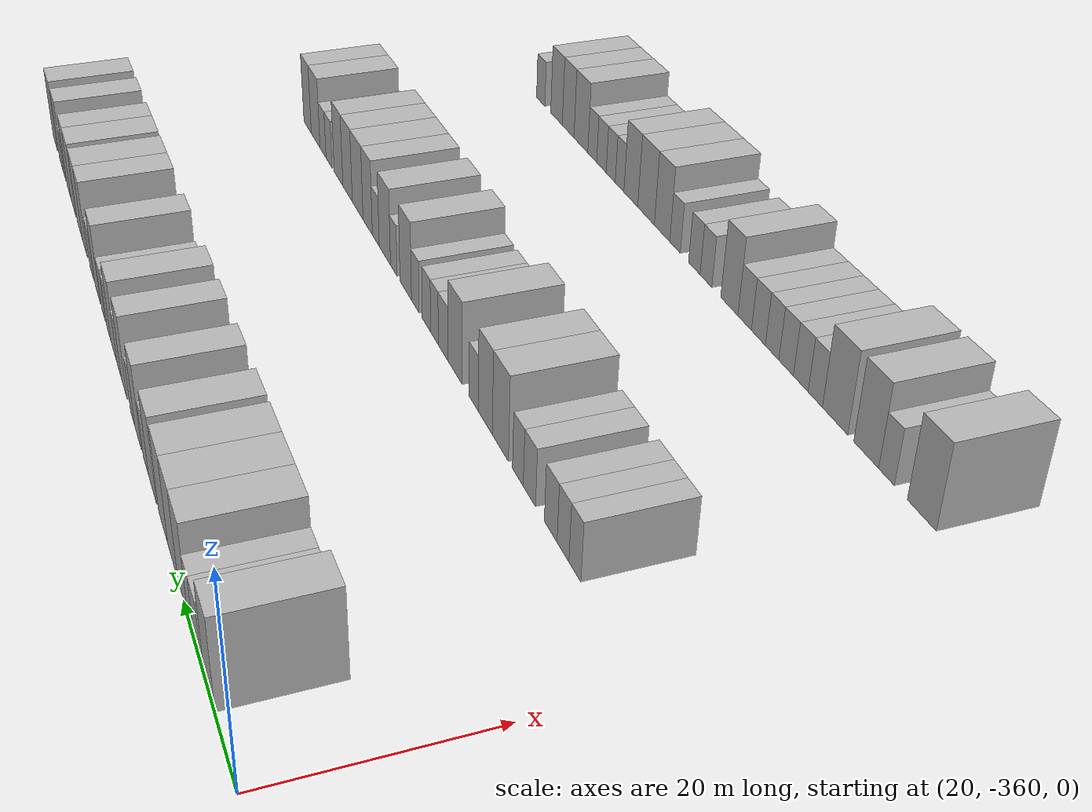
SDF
<sdf version="1.6">
 <world name="default">
  <model name="building_26">
   <static>1</static>
   <pose>25.0000 -350.1672 0 0.000000 0.000000 0.000000</pose>
   <link name="link">
    <pose>0 0 4.50 0 0 0</pose>
    <collision name="collision"><geometry><box><size>10.0000 4.0731 9.0000</size></box></geometry></collision>
    <visual name="visual">
     <cast_shadows>0</cast_shadows>
     <geometry><box><size>10.0000 4.0731 9.0000</size></box></geometry>
     <material>
      <script>
       <uri>model://HANNAS_wall/materials/scripts</uri>
       <uri>model://HANNAS_wall/materials/textures</uri>
       <name>vrc/HANNAS_wall</name>
      </script>
     </material>
    </visual>
   </link>
  </model>
  <model name="building_27">
   <static>1</static>
   <pose>25.0000 -345.6370 0 0.000000 0.000000 0.000000</pose>
   <link name="link">
    <pose>0 0 3.00 0 0 0</pose>
    <collision name="collision"><geometry><box><size>10.0000 2.9873 6.0000</size></box></geometry></collision>
    <visual name="visual">
     <cast_shadows>0</cast_shadows>
     <geometry><box><size>10.0000 2.9873 6.0000</size></box></geometry>
     <material>
      <script>
       <uri>model://HANNAS_wall/materials/scripts</uri>
       <uri>model://HANNAS_wall/materials/textures</uri>
       <name>vrc/HANNAS_wall</name>
      </script>
     </material>
    </visual>
   </link>
  </model>
  <model name="building_28">
   <static>1</static>
   <pose>25.0000 -342.8922 0 0.000000 0.000000 0.000000</pose>
   <link name="link">
    <pose>0 0 3.00 0 0 0</pose>
    <collision name="collision"><geometry><box><size>10.0000 2.5023 6.0000</size></box></geometry></collision>
    <visual name="visual">
     <cast_shadows>0</cast_shadows>
     <geometry><box><size>10.0000 2.5023 6.0000</size></box></geometry>
     <material>
      <script>
       <uri>model://HANNAS_wall/materials/scripts</uri>
       <uri>model://HANNAS_wall/materials/textures</uri>
       <name>vrc/HANNAS_wall</name>
      </script>
     </material>
    </visual>
   </link>
  </model>
  <model name="building_29">
   <static>1</static>
   <pose>25.0000 -339.5254 0 0.000000 0.000000 0.000000</pose>
   <link name="link">
    <pose>0 0 4.50 0 0 0</pose>
    <collision name="collision"><geometry><box><size>10.0000 4.2313 9.0000</size></box></geometry></collision>
    <visual name="visual">
     <cast_shadows>0</cast_shadows>
     <geometry><box><size>10.0000 4.2313 9.0000</size></box></geometry>
     <material>
      <script>
       <uri>model://HANNAS_wall/materials/scripts</uri>
       <uri>model://HANNAS_wall/materials/textures</uri>
       <name>vrc/HANNAS_wall</name>
      </script>
     </material>
    </visual>
   </link>
  </model>
  <model name="building_30">
   <static>1</static>
   <pose>25.0000 -335.1848 0 0.000000 0.000000 0.000000</pose>
   <link name="link">
    <pose>0 0 4.50 0 0 0</pose>
    <collision name="collision"><geometry><box><size>10.0000 4.4499 9.0000</size></box></geometry></collision>
    <visual name="visual">
     <cast_shadows>0</cast_shadows>
     <geometry><box><size>10.0000 4.4499 9.0000</size></box></geometry>
     <material>
      <script>
       <uri>model://HANNAS_wall/materials/scripts</uri>
       <uri>model://HANNAS_wall/materials/textures</uri>
       <name>vrc/HANNAS_wall</name>
      </script>
     </material>
    </visual>
   </link>
  </model>
  <model name="building_31">
   <static>1</static>
   <pose>25.0000 -330.7822 0 0.000000 0.000000 0.000000</pose>
   <link name="link">
    <pose>0 0 4.50 0 0 0</pose>
    <collision name="collision"><geometry><box><size>10.0000 4.3552 9.0000</size></box></geometry></collision>
    <visual name="visual">
     <cast_shadows>0</cast_shadows>
     <geometry><box><size>10.0000 4.3552 9.0000</size></box></geometry>
     <material>
      <script>
       <uri>model://HANNAS_wall/materials/scripts</uri>
       <uri>model://HANNAS_wall/materials/textures</uri>
       <name>vrc/HANNAS_wall</name>
      </script>
     </material>
    </visual>
   </link>
  </model>
  <model name="building_32">
   <static>1</static>
   <pose>25.0000 -325.5304 0 0.000000 0.000000 0.000000</pose>
   <link name="link">
    <pose>0 0 4.50 0 0 0</pose>
    <collision name="collision"><geometry><box><size>10.0000 4.1485 9.0000</size></box></geometry></collision>
    <visual name="visual">
     <cast_shadows>0</cast_shadows>
     <geometry><box><size>10.0000 4.1485 9.0000</size></box></geometry>
     <material>
      <script>
       <uri>model://HANNAS_wall/materials/scripts</uri>
       <uri>model://HANNAS_wall/materials/textures</uri>
       <name>vrc/HANNAS_wall</name>
      </script>
     </material>
    </visual>
   </link>
  </model>
  <model name="building_33">
   <static>1</static>
   <pose>25.0000 -322.0741 0 0.000000 0.000000 0.000000</pose>
   <link name="link">
    <pose>0 0 3.00 0 0 0</pose>
    <collision name="collision"><geometry><box><size>10.0000 2.7642 6.0000</size></box></geometry></collision>
    <visual name="visual">
     <cast_shadows>0</cast_shadows>
     <geometry><box><size>10.0000 2.7642 6.0000</size></box></geometry>
     <material>
      <script>
       <uri>model://HANNAS_wall/materials/scripts</uri>
       <uri>model://HANNAS_wall/materials/textures</uri>
       <name>vrc/HANNAS_wall</name>
      </script>
     </material>
    </visual>
   </link>
  </model>
  <model name="building_34">
   <static>1</static>
   <pose>25.0000 -317.8304 0 0.000000 0.000000 0.000000</pose>
   <link name="link">
    <pose>0 0 4.50 0 0 0</pose>
    <collision name="collision"><geometry><box><size>10.0000 3.7233 9.0000</size></box></geometry></collision>
    <visual name="visual">
     <cast_shadows>0</cast_shadows>
     <geometry><box><size>10.0000 3.7233 9.0000</size></box></geometry>
     <material>
      <script>
       <uri>model://HANNAS_wall/materials/scripts</uri>
       <uri>model://HANNAS_wall/materials/textures</uri>
       <name>vrc/HANNAS_wall</name>
      </script>
     </material>
    </visual>
   </link>
  </model>
  <model name="building_35">
   <static>1</static>
   <pose>25.0000 -314.7395 0 0.000000 0.000000 0.000000</pose>
   <link name="link">
    <pose>0 0 3.00 0 0 0</pose>
    <collision name="collision"><geometry><box><size>10.0000 2.4584 6.0000</size></box></geometry></collision>
    <visual name="visual">
     <cast_shadows>0</cast_shadows>
     <geometry><box><size>10.0000 2.4584 6.0000</size></box></geometry>
     <material>
      <script>
       <uri>model://HANNAS_wall/materials/scripts</uri>
       <uri>model://HANNAS_wall/materials/textures</uri>
       <name>vrc/HANNAS_wall</name>
      </script>
     </material>
    </visual>
   </link>
  </model>
  <model name="building_36">
   <static>1</static>
   <pose>25.0000 -309.7079 0 0.000000 0.000000 0.000000</pose>
   <link name="link">
    <pose>0 0 4.50 0 0 0</pose>
    <collision name="collision"><geometry><box><size>10.0000 3.6049 9.0000</size></box></geometry></collision>
    <visual name="visual">
     <cast_shadows>0</cast_shadows>
     <geometry><box><size>10.0000 3.6049 9.0000</size></box></geometry>
     <material>
      <script>
       <uri>model://HANNAS_wall/materials/scripts</uri>
       <uri>model://HANNAS_wall/materials/textures</uri>
       <name>vrc/HANNAS_wall</name>
      </script>
     </material>
    </visual>
   </link>
  </model>
  <model name="building_37">
   <static>1</static>
   <pose>25.0000 -306.5550 0 0.000000 0.000000 0.000000</pose>
   <link name="link">
    <pose>0 0 3.00 0 0 0</pose>
    <collision name="collision"><geometry><box><size>10.0000 2.7009 6.0000</size></box></geometry></collision>
    <visual name="visual">
     <cast_shadows>0</cast_shadows>
     <geometry><box><size>10.0000 2.7009 6.0000</size></box></geometry>
     <material>
      <script>
       <uri>model://HANNAS_wall/materials/scripts</uri>
       <uri>model://HANNAS_wall/materials/textures</uri>
       <name>vrc/HANNAS_wall</name>
      </script>
     </material>
    </visual>
   </link>
  </model>
  <model name="building_38">
   <static>1</static>
   <pose>25.0000 -303.2558 0 0.000000 0.000000 0.000000</pose>
   <link name="link">
    <pose>0 0 4.50 0 0 0</pose>
    <collision name="collision"><geometry><box><size>10.0000 3.8974 9.0000</size></box></geometry></collision>
    <visual name="visual">
     <cast_shadows>0</cast_shadows>
     <geometry><box><size>10.0000 3.8974 9.0000</size></box></geometry>
     <material>
      <script>
       <uri>model://HANNAS_wall/materials/scripts</uri>
       <uri>model://HANNAS_wall/materials/textures</uri>
       <name>vrc/HANNAS_wall</name>
      </script>
     </material>
    </visual>
   </link>
  </model>
  <model name="building_39">
   <static>1</static>
   <pose>25.0000 -299.8874 0 0.000000 0.000000 0.000000</pose>
   <link name="link">
    <pose>0 0 3.00 0 0 0</pose>
    <collision name="collision"><geometry><box><size>10.0000 2.8394 6.0000</size></box></geometry></collision>
    <visual name="visual">
     <cast_shadows>0</cast_shadows>
     <geometry><box><size>10.0000 2.8394 6.0000</size></box></geometry>
     <material>
      <script>
       <uri>model://HANNAS_wall/materials/scripts</uri>
       <uri>model://HANNAS_wall/materials/textures</uri>
       <name>vrc/HANNAS_wall</name>
      </script>
     </material>
    </visual>
   </link>
  </model>
  <model name="building_40">
   <static>1</static>
   <pose>25.0000 -296.1445 0 0.000000 0.000000 0.000000</pose>
   <link name="link">
    <pose>0 0 3.00 0 0 0</pose>
    <collision name="collision"><geometry><box><size>10.0000 2.6464 6.0000</size></box></geometry></collision>
    <visual name="visual">
     <cast_shadows>0</cast_shadows>
     <geometry><box><size>10.0000 2.6464 6.0000</size></box></geometry>
     <material>
      <script>
       <uri>model://HANNAS_wall/materials/scripts</uri>
       <uri>model://HANNAS_wall/materials/textures</uri>
       <name>vrc/HANNAS_wall</name>
      </script>
     </material>
    </visual>
   </link>
  </model>
  <model name="building_41">
   <static>1</static>
   <pose>25.0000 -291.9505 0 0.000000 0.000000 0.000000</pose>
   <link name="link">
    <pose>0 0 4.50 0 0 0</pose>
    <collision name="collision"><geometry><box><size>10.0000 3.7415 9.0000</size></box></geometry></collision>
    <visual name="visual">
     <cast_shadows>0</cast_shadows>
     <geometry><box><size>10.0000 3.7415 9.0000</size></box></geometry>
     <material>
      <script>
       <uri>model://HANNAS_wall/materials/scripts</uri>
       <uri>model://HANNAS_wall/materials/textures</uri>
       <name>vrc/HANNAS_wall</name>
      </script>
     </material>
    </visual>
   </link>
  </model>
  <model name="building_42">
   <static>1</static>
   <pose>25.0000 -287.5879 0 0.000000 0.000000 0.000000</pose>
   <link name="link">
    <pose>0 0 3.00 0 0 0</pose>
    <collision name="collision"><geometry><box><size>10.0000 2.9837 6.0000</size></box></geometry></collision>
    <visual name="visual">
     <cast_shadows>0</cast_shadows>
     <geometry><box><size>10.0000 2.9837 6.0000</size></box></geometry>
     <material>
      <script>
       <uri>model://HANNAS_wall/materials/scripts</uri>
       <uri>model://HANNAS_wall/materials/textures</uri>
       <name>vrc/HANNAS_wall</name>
      </script>
     </material>
    </visual>
   </link>
  </model>
  <model name="building_43">
   <static>1</static>
   <pose>25.0000 -282.1038 0 0.000000 0.000000 0.000000</pose>
   <link name="link">
    <pose>0 0 4.50 0 0 0</pose>
    <collision name="collision"><geometry><box><size>10.0000 3.9846 9.0000</size></box></geometry></collision>
    <visual name="visual">
     <cast_shadows>0</cast_shadows>
     <geometry><box><size>10.0000 3.9846 9.0000</size></box></geometry>
     <material>
      <script>
       <uri>model://HANNAS_wall/materials/scripts</uri>
       <uri>model://HANNAS_wall/materials/textures</uri>
       <name>vrc/HANNAS_wall</name>
      </script>
     </material>
    </visual>
   </link>
  </model>
  <model name="building_44">
   <static>1</static>
   <pose>25.0000 -277.9090 0 0.000000 0.000000 0.000000</pose>
   <link name="link">
    <pose>0 0 4.50 0 0 0</pose>
    <collision name="collision"><geometry><box><size>10.0000 4.4050 9.0000</size></box></geometry></collision>
    <visual name="visual">
     <cast_shadows>0</cast_shadows>
     <geometry><box><size>10.0000 4.4050 9.0000</size></box></geometry>
     <material>
      <script>
       <uri>model://HANNAS_wall/materials/scripts</uri>
       <uri>model://HANNAS_wall/materials/textures</uri>
       <name>vrc/HANNAS_wall</name>
      </script>
     </material>
    </visual>
   </link>
  </model>
  <model name="building_45">
   <static>1</static>
   <pose>25.0000 -272.4863 0 0.000000 0.000000 0.000000</pose>
   <link name="link">
    <pose>0 0 4.50 0 0 0</pose>
    <collision name="collision"><geometry><box><size>10.0000 4.4404 9.0000</size></box></geometry></collision>
    <visual name="visual">
     <cast_shadows>0</cast_shadows>
     <geometry><box><size>10.0000 4.4404 9.0000</size></box></geometry>
     <material>
      <script>
       <uri>model://HANNAS_wall/materials/scripts</uri>
       <uri>model://HANNAS_wall/materials/textures</uri>
       <name>vrc/HANNAS_wall</name>
      </script>
     </material>
    </visual>
   </link>
  </model>
  <model name="building_46">
   <static>1</static>
   <pose>25.0000 -268.4401 0 0.000000 0.000000 0.000000</pose>
   <link name="link">
    <pose>0 0 4.50 0 0 0</pose>
    <collision name="collision"><geometry><box><size>10.0000 3.6520 9.0000</size></box></geometry></collision>
    <visual name="visual">
     <cast_shadows>0</cast_shadows>
     <geometry><box><size>10.0000 3.6520 9.0000</size></box></geometry>
     <material>
      <script>
       <uri>model://HANNAS_wall/materials/scripts</uri>
       <uri>model://HANNAS_wall/materials/textures</uri>
       <name>vrc/HANNAS_wall</name>
      </script>
     </material>
    </visual>
   </link>
  </model>
  <model name="building_47">
   <static>1</static>
   <pose>25.0000 -264.3967 0 0.000000 0.000000 0.000000</pose>
   <link name="link">
    <pose>0 0 3.00 0 0 0</pose>
    <collision name="collision"><geometry><box><size>10.0000 2.4347 6.0000</size></box></geometry></collision>
    <visual name="visual">
     <cast_shadows>0</cast_shadows>
     <geometry><box><size>10.0000 2.4347 6.0000</size></box></geometry>
     <material>
      <script>
       <uri>model://HANNAS_wall/materials/scripts</uri>
       <uri>model://HANNAS_wall/materials/textures</uri>
       <name>vrc/HANNAS_wall</name>
      </script>
     </material>
    </visual>
   </link>
  </model>
  <model name="building_48">
   <static>1</static>
   <pose>25.0000 -261.1914 0 0.000000 0.000000 0.000000</pose>
   <link name="link">
    <pose>0 0 4.50 0 0 0</pose>
    <collision name="collision"><geometry><box><size>10.0000 3.9759 9.0000</size></box></geometry></collision>
    <visual name="visual">
     <cast_shadows>0</cast_shadows>
     <geometry><box><size>10.0000 3.9759 9.0000</size></box></geometry>
     <material>
      <script>
       <uri>model://HANNAS_wall/materials/scripts</uri>
       <uri>model://HANNAS_wall/materials/textures</uri>
       <name>vrc/HANNAS_wall</name>
      </script>
     </material>
    </visual>
   </link>
  </model>
  <model name="building_49">
   <static>1</static>
   <pose>25.0000 -255.0566 0 0.000000 0.000000 0.000000</pose>
   <link name="link">
    <pose>0 0 4.50 0 0 0</pose>
    <collision name="collision"><geometry><box><size>10.0000 4.2938 9.0000</size></box></geometry></collision>
    <visual name="visual">
     <cast_shadows>0</cast_shadows>
     <geometry><box><size>10.0000 4.2938 9.0000</size></box></geometry>
     <material>
      <script>
       <uri>model://HANNAS_wall/materials/scripts</uri>
       <uri>model://HANNAS_wall/materials/textures</uri>
       <name>vrc/HANNAS_wall</name>
      </script>
     </material>
    </visual>
   </link>
  </model>
  <model name="building_262">
   <static>1</static>
   <pose>55.0000 -346.6349 0 0.000000 0.000000 0.000000</pose>
   <link name="link">
    <pose>0 0 3.00 0 0 0</pose>
    <collision name="collision"><geometry><box><size>10.0000 2.4881 6.0000</size></box></geometry></collision>
    <visual name="visual">
     <cast_shadows>0</cast_shadows>
     <geometry><box><size>10.0000 2.4881 6.0000</size></box></geometry>
     <material>
      <script>
       <uri>model://HANNAS_wall/materials/scripts</uri>
       <uri>model://HANNAS_wall/materials/textures</uri>
       <name>vrc/HANNAS_wall</name>
      </script>
     </material>
    </visual>
   </link>
  </model>
  <model name="building_263">
   <static>1</static>
   <pose>55.0000 -344.1157 0 0.000000 0.000000 0.000000</pose>
   <link name="link">
    <pose>0 0 3.00 0 0 0</pose>
    <collision name="collision"><geometry><box><size>10.0000 2.5502 6.0000</size></box></geometry></collision>
    <visual name="visual">
     <cast_shadows>0</cast_shadows>
     <geometry><box><size>10.0000 2.5502 6.0000</size></box></geometry>
     <material>
      <script>
       <uri>model://HANNAS_wall/materials/scripts</uri>
       <uri>model://HANNAS_wall/materials/textures</uri>
       <name>vrc/HANNAS_wall</name>
      </script>
     </material>
    </visual>
   </link>
  </model>
  <model name="building_264">
   <static>1</static>
   <pose>55.0000 -341.4378 0 0.000000 0.000000 0.000000</pose>
   <link name="link">
    <pose>0 0 3.00 0 0 0</pose>
    <collision name="collision"><geometry><box><size>10.0000 2.8056 6.0000</size></box></geometry></collision>
    <visual name="visual">
     <cast_shadows>0</cast_shadows>
     <geometry><box><size>10.0000 2.8056 6.0000</size></box></geometry>
     <material>
      <script>
       <uri>model://HANNAS_wall/materials/scripts</uri>
       <uri>model://HANNAS_wall/materials/textures</uri>
       <name>vrc/HANNAS_wall</name>
      </script>
     </material>
    </visual>
   </link>
  </model>
  <model name="building_265">
   <static>1</static>
   <pose>55.0000 -336.5832 0 0.000000 0.000000 0.000000</pose>
   <link name="link">
    <pose>0 0 3.00 0 0 0</pose>
    <collision name="collision"><geometry><box><size>10.0000 2.9038 6.0000</size></box></geometry></collision>
    <visual name="visual">
     <cast_shadows>0</cast_shadows>
     <geometry><box><size>10.0000 2.9038 6.0000</size></box></geometry>
     <material>
      <script>
       <uri>model://HANNAS_wall/materials/scripts</uri>
       <uri>model://HANNAS_wall/materials/textures</uri>
       <name>vrc/HANNAS_wall</name>
      </script>
     </material>
    </visual>
   </link>
  </model>
  <model name="building_266">
   <static>1</static>
   <pose>55.0000 -333.8199 0 0.000000 0.000000 0.000000</pose>
   <link name="link">
    <pose>0 0 3.00 0 0 0</pose>
    <collision name="collision"><geometry><box><size>10.0000 2.6228 6.0000</size></box></geometry></collision>
    <visual name="visual">
     <cast_shadows>0</cast_shadows>
     <geometry><box><size>10.0000 2.6228 6.0000</size></box></geometry>
     <material>
      <script>
       <uri>model://HANNAS_wall/materials/scripts</uri>
       <uri>model://HANNAS_wall/materials/textures</uri>
       <name>vrc/HANNAS_wall</name>
      </script>
     </material>
    </visual>
   </link>
  </model>
  <model name="building_267">
   <static>1</static>
   <pose>55.0000 -329.4349 0 0.000000 0.000000 0.000000</pose>
   <link name="link">
    <pose>0 0 4.50 0 0 0</pose>
    <collision name="collision"><geometry><box><size>10.0000 4.1471 9.0000</size></box></geometry></collision>
    <visual name="visual">
     <cast_shadows>0</cast_shadows>
     <geometry><box><size>10.0000 4.1471 9.0000</size></box></geometry>
     <material>
      <script>
       <uri>model://HANNAS_wall/materials/scripts</uri>
       <uri>model://HANNAS_wall/materials/textures</uri>
       <name>vrc/HANNAS_wall</name>
      </script>
     </material>
    </visual>
   </link>
  </model>
  <model name="building_268">
   <static>1</static>
   <pose>55.0000 -325.4736 0 0.000000 0.000000 0.000000</pose>
   <link name="link">
    <pose>0 0 4.50 0 0 0</pose>
    <collision name="collision"><geometry><box><size>10.0000 3.7755 9.0000</size></box></geometry></collision>
    <visual name="visual">
     <cast_shadows>0</cast_shadows>
     <geometry><box><size>10.0000 3.7755 9.0000</size></box></geometry>
     <material>
      <script>
       <uri>model://HANNAS_wall/materials/scripts</uri>
       <uri>model://HANNAS_wall/materials/textures</uri>
       <name>vrc/HANNAS_wall</name>
      </script>
     </material>
    </visual>
   </link>
  </model>
  <model name="building_269">
   <static>1</static>
   <pose>55.0000 -322.3316 0 0.000000 0.000000 0.000000</pose>
   <link name="link">
    <pose>0 0 3.00 0 0 0</pose>
    <collision name="collision"><geometry><box><size>10.0000 2.5087 6.0000</size></box></geometry></collision>
    <visual name="visual">
     <cast_shadows>0</cast_shadows>
     <geometry><box><size>10.0000 2.5087 6.0000</size></box></geometry>
     <material>
      <script>
       <uri>model://HANNAS_wall/materials/scripts</uri>
       <uri>model://HANNAS_wall/materials/textures</uri>
       <name>vrc/HANNAS_wall</name>
      </script>
     </material>
    </visual>
   </link>
  </model>
  <model name="building_270">
   <static>1</static>
   <pose>55.0000 -317.0131 0 0.000000 0.000000 0.000000</pose>
   <link name="link">
    <pose>0 0 4.50 0 0 0</pose>
    <collision name="collision"><geometry><box><size>10.0000 4.1282 9.0000</size></box></geometry></collision>
    <visual name="visual">
     <cast_shadows>0</cast_shadows>
     <geometry><box><size>10.0000 4.1282 9.0000</size></box></geometry>
     <material>
      <script>
       <uri>model://HANNAS_wall/materials/scripts</uri>
       <uri>model://HANNAS_wall/materials/textures</uri>
       <name>vrc/HANNAS_wall</name>
      </script>
     </material>
    </visual>
   </link>
  </model>
  <model name="building_271">
   <static>1</static>
   <pose>55.0000 -313.4505 0 0.000000 0.000000 0.000000</pose>
   <link name="link">
    <pose>0 0 3.00 0 0 0</pose>
    <collision name="collision"><geometry><box><size>10.0000 2.9970 6.0000</size></box></geometry></collision>
    <visual name="visual">
     <cast_shadows>0</cast_shadows>
     <geometry><box><size>10.0000 2.9970 6.0000</size></box></geometry>
     <material>
      <script>
       <uri>model://HANNAS_wall/materials/scripts</uri>
       <uri>model://HANNAS_wall/materials/textures</uri>
       <name>vrc/HANNAS_wall</name>
      </script>
     </material>
    </visual>
   </link>
  </model>
  <model name="building_272">
   <static>1</static>
   <pose>55.0000 -310.7449 0 0.000000 0.000000 0.000000</pose>
   <link name="link">
    <pose>0 0 3.00 0 0 0</pose>
    <collision name="collision"><geometry><box><size>10.0000 2.4142 6.0000</size></box></geometry></collision>
    <visual name="visual">
     <cast_shadows>0</cast_shadows>
     <geometry><box><size>10.0000 2.4142 6.0000</size></box></geometry>
     <material>
      <script>
       <uri>model://HANNAS_wall/materials/scripts</uri>
       <uri>model://HANNAS_wall/materials/textures</uri>
       <name>vrc/HANNAS_wall</name>
      </script>
     </material>
    </visual>
   </link>
  </model>
  <model name="building_273">
   <static>1</static>
   <pose>55.0000 -308.1806 0 0.000000 0.000000 0.000000</pose>
   <link name="link">
    <pose>0 0 3.00 0 0 0</pose>
    <collision name="collision"><geometry><box><size>10.0000 2.7143 6.0000</size></box></geometry></collision>
    <visual name="visual">
     <cast_shadows>0</cast_shadows>
     <geometry><box><size>10.0000 2.7143 6.0000</size></box></geometry>
     <material>
      <script>
       <uri>model://HANNAS_wall/materials/scripts</uri>
       <uri>model://HANNAS_wall/materials/textures</uri>
       <name>vrc/HANNAS_wall</name>
      </script>
     </material>
    </visual>
   </link>
  </model>
  <model name="building_274">
   <static>1</static>
   <pose>55.0000 -304.5362 0 0.000000 0.000000 0.000000</pose>
   <link name="link">
    <pose>0 0 3.00 0 0 0</pose>
    <collision name="collision"><geometry><box><size>10.0000 2.5746 6.0000</size></box></geometry></collision>
    <visual name="visual">
     <cast_shadows>0</cast_shadows>
     <geometry><box><size>10.0000 2.5746 6.0000</size></box></geometry>
     <material>
      <script>
       <uri>model://HANNAS_wall/materials/scripts</uri>
       <uri>model://HANNAS_wall/materials/textures</uri>
       <name>vrc/HANNAS_wall</name>
      </script>
     </material>
    </visual>
   </link>
  </model>
  <model name="building_275">
   <static>1</static>
   <pose>55.0000 -301.2567 0 0.000000 0.000000 0.000000</pose>
   <link name="link">
    <pose>0 0 4.50 0 0 0</pose>
    <collision name="collision"><geometry><box><size>10.0000 3.9843 9.0000</size></box></geometry></collision>
    <visual name="visual">
     <cast_shadows>0</cast_shadows>
     <geometry><box><size>10.0000 3.9843 9.0000</size></box></geometry>
     <material>
      <script>
       <uri>model://HANNAS_wall/materials/scripts</uri>
       <uri>model://HANNAS_wall/materials/textures</uri>
       <name>vrc/HANNAS_wall</name>
      </script>
     </material>
    </visual>
   </link>
  </model>
  <model name="building_276">
   <static>1</static>
   <pose>55.0000 -297.0588 0 0.000000 0.000000 0.000000</pose>
   <link name="link">
    <pose>0 0 3.00 0 0 0</pose>
    <collision name="collision"><geometry><box><size>10.0000 2.4116 6.0000</size></box></geometry></collision>
    <visual name="visual">
     <cast_shadows>0</cast_shadows>
     <geometry><box><size>10.0000 2.4116 6.0000</size></box></geometry>
     <material>
      <script>
       <uri>model://HANNAS_wall/materials/scripts</uri>
       <uri>model://HANNAS_wall/materials/textures</uri>
       <name>vrc/HANNAS_wall</name>
      </script>
     </material>
    </visual>
   </link>
  </model>
  <model name="building_277">
   <static>1</static>
   <pose>55.0000 -293.7580 0 0.000000 0.000000 0.000000</pose>
   <link name="link">
    <pose>0 0 4.50 0 0 0</pose>
    <collision name="collision"><geometry><box><size>10.0000 4.1901 9.0000</size></box></geometry></collision>
    <visual name="visual">
     <cast_shadows>0</cast_shadows>
     <geometry><box><size>10.0000 4.1901 9.0000</size></box></geometry>
     <material>
      <script>
       <uri>model://HANNAS_wall/materials/scripts</uri>
       <uri>model://HANNAS_wall/materials/textures</uri>
       <name>vrc/HANNAS_wall</name>
      </script>
     </material>
    </visual>
   </link>
  </model>
  <model name="building_278">
   <static>1</static>
   <pose>55.0000 -290.3494 0 0.000000 0.000000 0.000000</pose>
   <link name="link">
    <pose>0 0 3.00 0 0 0</pose>
    <collision name="collision"><geometry><box><size>10.0000 2.6272 6.0000</size></box></geometry></collision>
    <visual name="visual">
     <cast_shadows>0</cast_shadows>
     <geometry><box><size>10.0000 2.6272 6.0000</size></box></geometry>
     <material>
      <script>
       <uri>model://HANNAS_wall/materials/scripts</uri>
       <uri>model://HANNAS_wall/materials/textures</uri>
       <name>vrc/HANNAS_wall</name>
      </script>
     </material>
    </visual>
   </link>
  </model>
  <model name="building_279">
   <static>1</static>
   <pose>55.0000 -287.1884 0 0.000000 0.000000 0.000000</pose>
   <link name="link">
    <pose>0 0 4.50 0 0 0</pose>
    <collision name="collision"><geometry><box><size>10.0000 3.6947 9.0000</size></box></geometry></collision>
    <visual name="visual">
     <cast_shadows>0</cast_shadows>
     <geometry><box><size>10.0000 3.6947 9.0000</size></box></geometry>
     <material>
      <script>
       <uri>model://HANNAS_wall/materials/scripts</uri>
       <uri>model://HANNAS_wall/materials/textures</uri>
       <name>vrc/HANNAS_wall</name>
      </script>
     </material>
    </visual>
   </link>
  </model>
  <model name="building_280">
   <static>1</static>
   <pose>55.0000 -283.1268 0 0.000000 0.000000 0.000000</pose>
   <link name="link">
    <pose>0 0 4.50 0 0 0</pose>
    <collision name="collision"><geometry><box><size>10.0000 4.4284 9.0000</size></box></geometry></collision>
    <visual name="visual">
     <cast_shadows>0</cast_shadows>
     <geometry><box><size>10.0000 4.4284 9.0000</size></box></geometry>
     <material>
      <script>
       <uri>model://HANNAS_wall/materials/scripts</uri>
       <uri>model://HANNAS_wall/materials/textures</uri>
       <name>vrc/HANNAS_wall</name>
      </script>
     </material>
    </visual>
   </link>
  </model>
  <model name="building_281">
   <static>1</static>
   <pose>55.0000 -278.8996 0 0.000000 0.000000 0.000000</pose>
   <link name="link">
    <pose>0 0 4.50 0 0 0</pose>
    <collision name="collision"><geometry><box><size>10.0000 4.0261 9.0000</size></box></geometry></collision>
    <visual name="visual">
     <cast_shadows>0</cast_shadows>
     <geometry><box><size>10.0000 4.0261 9.0000</size></box></geometry>
     <material>
      <script>
       <uri>model://HANNAS_wall/materials/scripts</uri>
       <uri>model://HANNAS_wall/materials/textures</uri>
       <name>vrc/HANNAS_wall</name>
      </script>
     </material>
    </visual>
   </link>
  </model>
  <model name="building_282">
   <static>1</static>
   <pose>55.0000 -274.9570 0 0.000000 0.000000 0.000000</pose>
   <link name="link">
    <pose>0 0 4.50 0 0 0</pose>
    <collision name="collision"><geometry><box><size>10.0000 3.8592 9.0000</size></box></geometry></collision>
    <visual name="visual">
     <cast_shadows>0</cast_shadows>
     <geometry><box><size>10.0000 3.8592 9.0000</size></box></geometry>
     <material>
      <script>
       <uri>model://HANNAS_wall/materials/scripts</uri>
       <uri>model://HANNAS_wall/materials/textures</uri>
       <name>vrc/HANNAS_wall</name>
      </script>
     </material>
    </visual>
   </link>
  </model>
  <model name="building_283">
   <static>1</static>
   <pose>55.0000 -270.6451 0 0.000000 0.000000 0.000000</pose>
   <link name="link">
    <pose>0 0 3.00 0 0 0</pose>
    <collision name="collision"><geometry><box><size>10.0000 2.7645 6.0000</size></box></geometry></collision>
    <visual name="visual">
     <cast_shadows>0</cast_shadows>
     <geometry><box><size>10.0000 2.7645 6.0000</size></box></geometry>
     <material>
      <script>
       <uri>model://HANNAS_wall/materials/scripts</uri>
       <uri>model://HANNAS_wall/materials/textures</uri>
       <name>vrc/HANNAS_wall</name>
      </script>
     </material>
    </visual>
   </link>
  </model>
  <model name="building_284">
   <static>1</static>
   <pose>55.0000 -267.8725 0 0.000000 0.000000 0.000000</pose>
   <link name="link">
    <pose>0 0 3.00 0 0 0</pose>
    <collision name="collision"><geometry><box><size>10.0000 2.7808 6.0000</size></box></geometry></collision>
    <visual name="visual">
     <cast_shadows>0</cast_shadows>
     <geometry><box><size>10.0000 2.7808 6.0000</size></box></geometry>
     <material>
      <script>
       <uri>model://HANNAS_wall/materials/scripts</uri>
       <uri>model://HANNAS_wall/materials/textures</uri>
       <name>vrc/HANNAS_wall</name>
      </script>
     </material>
    </visual>
   </link>
  </model>
  <model name="building_285">
   <static>1</static>
   <pose>55.0000 -264.3488 0 0.000000 0.000000 0.000000</pose>
   <link name="link">
    <pose>0 0 4.50 0 0 0</pose>
    <collision name="collision"><geometry><box><size>10.0000 4.2666 9.0000</size></box></geometry></collision>
    <visual name="visual">
     <cast_shadows>0</cast_shadows>
     <geometry><box><size>10.0000 4.2666 9.0000</size></box></geometry>
     <material>
      <script>
       <uri>model://HANNAS_wall/materials/scripts</uri>
       <uri>model://HANNAS_wall/materials/textures</uri>
       <name>vrc/HANNAS_wall</name>
      </script>
     </material>
    </visual>
   </link>
  </model>
  <model name="building_286">
   <static>1</static>
   <pose>55.0000 -260.3880 0 0.000000 0.000000 0.000000</pose>
   <link name="link">
    <pose>0 0 4.50 0 0 0</pose>
    <collision name="collision"><geometry><box><size>10.0000 3.6549 9.0000</size></box></geometry></collision>
    <visual name="visual">
     <cast_shadows>0</cast_shadows>
     <geometry><box><size>10.0000 3.6549 9.0000</size></box></geometry>
     <material>
      <script>
       <uri>model://HANNAS_wall/materials/scripts</uri>
       <uri>model://HANNAS_wall/materials/textures</uri>
       <name>vrc/HANNAS_wall</name>
      </script>
     </material>
    </visual>
   </link>
  </model>
  <model name="building_471">
   <static>1</static>
   <pose>85.0000 -349.3738 0 0.000000 0.000000 0.000000</pose>
   <link name="link">
    <pose>0 0 4.50 0 0 0</pose>
    <collision name="collision"><geometry><box><size>10.0000 4.3116 9.0000</size></box></geometry></collision>
    <visual name="visual">
     <cast_shadows>0</cast_shadows>
     <geometry><box><size>10.0000 4.3116 9.0000</size></box></geometry>
     <material>
      <script>
       <uri>model://HANNAS_wall/materials/scripts</uri>
       <uri>model://HANNAS_wall/materials/textures</uri>
       <name>vrc/HANNAS_wall</name>
      </script>
     </material>
    </visual>
   </link>
  </model>
  <model name="building_472">
   <static>1</static>
   <pose>85.0000 -343.9709 0 0.000000 0.000000 0.000000</pose>
   <link name="link">
    <pose>0 0 3.00 0 0 0</pose>
    <collision name="collision"><geometry><box><size>10.0000 2.4942 6.0000</size></box></geometry></collision>
    <visual name="visual">
     <cast_shadows>0</cast_shadows>
     <geometry><box><size>10.0000 2.4942 6.0000</size></box></geometry>
     <material>
      <script>
       <uri>model://HANNAS_wall/materials/scripts</uri>
       <uri>model://HANNAS_wall/materials/textures</uri>
       <name>vrc/HANNAS_wall</name>
      </script>
     </material>
    </visual>
   </link>
  </model>
  <model name="building_473">
   <static>1</static>
   <pose>85.0000 -340.6652 0 0.000000 0.000000 0.000000</pose>
   <link name="link">
    <pose>0 0 4.50 0 0 0</pose>
    <collision name="collision"><geometry><box><size>10.0000 4.1172 9.0000</size></box></geometry></collision>
    <visual name="visual">
     <cast_shadows>0</cast_shadows>
     <geometry><box><size>10.0000 4.1172 9.0000</size></box></geometry>
     <material>
      <script>
       <uri>model://HANNAS_wall/materials/scripts</uri>
       <uri>model://HANNAS_wall/materials/textures</uri>
       <name>vrc/HANNAS_wall</name>
      </script>
     </material>
    </visual>
   </link>
  </model>
  <model name="building_474">
   <static>1</static>
   <pose>85.0000 -335.3727 0 0.000000 0.000000 0.000000</pose>
   <link name="link">
    <pose>0 0 4.50 0 0 0</pose>
    <collision name="collision"><geometry><box><size>10.0000 4.4680 9.0000</size></box></geometry></collision>
    <visual name="visual">
     <cast_shadows>0</cast_shadows>
     <geometry><box><size>10.0000 4.4680 9.0000</size></box></geometry>
     <material>
      <script>
       <uri>model://HANNAS_wall/materials/scripts</uri>
       <uri>model://HANNAS_wall/materials/textures</uri>
       <name>vrc/HANNAS_wall</name>
      </script>
     </material>
    </visual>
   </link>
  </model>
  <model name="building_475">
   <static>1</static>
   <pose>85.0000 -331.8373 0 0.000000 0.000000 0.000000</pose>
   <link name="link">
    <pose>0 0 3.00 0 0 0</pose>
    <collision name="collision"><geometry><box><size>10.0000 2.6028 6.0000</size></box></geometry></collision>
    <visual name="visual">
     <cast_shadows>0</cast_shadows>
     <geometry><box><size>10.0000 2.6028 6.0000</size></box></geometry>
     <material>
      <script>
       <uri>model://HANNAS_wall/materials/scripts</uri>
       <uri>model://HANNAS_wall/materials/textures</uri>
       <name>vrc/HANNAS_wall</name>
      </script>
     </material>
    </visual>
   </link>
  </model>
  <model name="building_476">
   <static>1</static>
   <pose>85.0000 -329.1518 0 0.000000 0.000000 0.000000</pose>
   <link name="link">
    <pose>0 0 3.00 0 0 0</pose>
    <collision name="collision"><geometry><box><size>10.0000 2.7681 6.0000</size></box></geometry></collision>
    <visual name="visual">
     <cast_shadows>0</cast_shadows>
     <geometry><box><size>10.0000 2.7681 6.0000</size></box></geometry>
     <material>
      <script>
       <uri>model://HANNAS_wall/materials/scripts</uri>
       <uri>model://HANNAS_wall/materials/textures</uri>
       <name>vrc/HANNAS_wall</name>
      </script>
     </material>
    </visual>
   </link>
  </model>
  <model name="building_477">
   <static>1</static>
   <pose>85.0000 -326.3600 0 0.000000 0.000000 0.000000</pose>
   <link name="link">
    <pose>0 0 3.00 0 0 0</pose>
    <collision name="collision"><geometry><box><size>10.0000 2.8157 6.0000</size></box></geometry></collision>
    <visual name="visual">
     <cast_shadows>0</cast_shadows>
     <geometry><box><size>10.0000 2.8157 6.0000</size></box></geometry>
     <material>
      <script>
       <uri>model://HANNAS_wall/materials/scripts</uri>
       <uri>model://HANNAS_wall/materials/textures</uri>
       <name>vrc/HANNAS_wall</name>
      </script>
     </material>
    </visual>
   </link>
  </model>
  <model name="building_478">
   <static>1</static>
   <pose>85.0000 -323.6005 0 0.000000 0.000000 0.000000</pose>
   <link name="link">
    <pose>0 0 3.00 0 0 0</pose>
    <collision name="collision"><geometry><box><size>10.0000 2.7033 6.0000</size></box></geometry></collision>
    <visual name="visual">
     <cast_shadows>0</cast_shadows>
     <geometry><box><size>10.0000 2.7033 6.0000</size></box></geometry>
     <material>
      <script>
       <uri>model://HANNAS_wall/materials/scripts</uri>
       <uri>model://HANNAS_wall/materials/textures</uri>
       <name>vrc/HANNAS_wall</name>
      </script>
     </material>
    </visual>
   </link>
  </model>
  <model name="building_479">
   <static>1</static>
   <pose>85.0000 -320.8213 0 0.000000 0.000000 0.000000</pose>
   <link name="link">
    <pose>0 0 3.00 0 0 0</pose>
    <collision name="collision"><geometry><box><size>10.0000 2.8552 6.0000</size></box></geometry></collision>
    <visual name="visual">
     <cast_shadows>0</cast_shadows>
     <geometry><box><size>10.0000 2.8552 6.0000</size></box></geometry>
     <material>
      <script>
       <uri>model://HANNAS_wall/materials/scripts</uri>
       <uri>model://HANNAS_wall/materials/textures</uri>
       <name>vrc/HANNAS_wall</name>
      </script>
     </material>
    </visual>
   </link>
  </model>
  <model name="building_480">
   <static>1</static>
   <pose>85.0000 -317.9692 0 0.000000 0.000000 0.000000</pose>
   <link name="link">
    <pose>0 0 3.00 0 0 0</pose>
    <collision name="collision"><geometry><box><size>10.0000 2.8491 6.0000</size></box></geometry></collision>
    <visual name="visual">
     <cast_shadows>0</cast_shadows>
     <geometry><box><size>10.0000 2.8491 6.0000</size></box></geometry>
     <material>
      <script>
       <uri>model://HANNAS_wall/materials/scripts</uri>
       <uri>model://HANNAS_wall/materials/textures</uri>
       <name>vrc/HANNAS_wall</name>
      </script>
     </material>
    </visual>
   </link>
  </model>
  <model name="building_481">
   <static>1</static>
   <pose>85.0000 -314.6621 0 0.000000 0.000000 0.000000</pose>
   <link name="link">
    <pose>0 0 4.50 0 0 0</pose>
    <collision name="collision"><geometry><box><size>10.0000 3.7651 9.0000</size></box></geometry></collision>
    <visual name="visual">
     <cast_shadows>0</cast_shadows>
     <geometry><box><size>10.0000 3.7651 9.0000</size></box></geometry>
     <material>
      <script>
       <uri>model://HANNAS_wall/materials/scripts</uri>
       <uri>model://HANNAS_wall/materials/textures</uri>
       <name>vrc/HANNAS_wall</name>
      </script>
     </material>
    </visual>
   </link>
  </model>
  <model name="building_482">
   <static>1</static>
   <pose>85.0000 -309.4191 0 0.000000 0.000000 0.000000</pose>
   <link name="link">
    <pose>0 0 3.00 0 0 0</pose>
    <collision name="collision"><geometry><box><size>10.0000 2.7208 6.0000</size></box></geometry></collision>
    <visual name="visual">
     <cast_shadows>0</cast_shadows>
     <geometry><box><size>10.0000 2.7208 6.0000</size></box></geometry>
     <material>
      <script>
       <uri>model://HANNAS_wall/materials/scripts</uri>
       <uri>model://HANNAS_wall/materials/textures</uri>
       <name>vrc/HANNAS_wall</name>
      </script>
     </material>
    </visual>
   </link>
  </model>
  <model name="building_483">
   <static>1</static>
   <pose>85.0000 -306.6988 0 0.000000 0.000000 0.000000</pose>
   <link name="link">
    <pose>0 0 3.00 0 0 0</pose>
    <collision name="collision"><geometry><box><size>10.0000 2.7199 6.0000</size></box></geometry></collision>
    <visual name="visual">
     <cast_shadows>0</cast_shadows>
     <geometry><box><size>10.0000 2.7199 6.0000</size></box></geometry>
     <material>
      <script>
       <uri>model://HANNAS_wall/materials/scripts</uri>
       <uri>model://HANNAS_wall/materials/textures</uri>
       <name>vrc/HANNAS_wall</name>
      </script>
     </material>
    </visual>
   </link>
  </model>
  <model name="building_484">
   <static>1</static>
   <pose>85.0000 -302.0310 0 0.000000 0.000000 0.000000</pose>
   <link name="link">
    <pose>0 0 3.00 0 0 0</pose>
    <collision name="collision"><geometry><box><size>10.0000 2.6155 6.0000</size></box></geometry></collision>
    <visual name="visual">
     <cast_shadows>0</cast_shadows>
     <geometry><box><size>10.0000 2.6155 6.0000</size></box></geometry>
     <material>
      <script>
       <uri>model://HANNAS_wall/materials/scripts</uri>
       <uri>model://HANNAS_wall/materials/textures</uri>
       <name>vrc/HANNAS_wall</name>
      </script>
     </material>
    </visual>
   </link>
  </model>
  <model name="building_485">
   <static>1</static>
   <pose>85.0000 -298.7519 0 0.000000 0.000000 0.000000</pose>
   <link name="link">
    <pose>0 0 4.50 0 0 0</pose>
    <collision name="collision"><geometry><box><size>10.0000 3.9428 9.0000</size></box></geometry></collision>
    <visual name="visual">
     <cast_shadows>0</cast_shadows>
     <geometry><box><size>10.0000 3.9428 9.0000</size></box></geometry>
     <material>
      <script>
       <uri>model://HANNAS_wall/materials/scripts</uri>
       <uri>model://HANNAS_wall/materials/textures</uri>
       <name>vrc/HANNAS_wall</name>
      </script>
     </material>
    </visual>
   </link>
  </model>
  <model name="building_486">
   <static>1</static>
   <pose>85.0000 -294.5715 0 0.000000 0.000000 0.000000</pose>
   <link name="link">
    <pose>0 0 4.50 0 0 0</pose>
    <collision name="collision"><geometry><box><size>10.0000 4.4180 9.0000</size></box></geometry></collision>
    <visual name="visual">
     <cast_shadows>0</cast_shadows>
     <geometry><box><size>10.0000 4.4180 9.0000</size></box></geometry>
     <material>
      <script>
       <uri>model://HANNAS_wall/materials/scripts</uri>
       <uri>model://HANNAS_wall/materials/textures</uri>
       <name>vrc/HANNAS_wall</name>
      </script>
     </material>
    </visual>
   </link>
  </model>
  <model name="building_487">
   <static>1</static>
   <pose>85.0000 -290.4560 0 0.000000 0.000000 0.000000</pose>
   <link name="link">
    <pose>0 0 4.50 0 0 0</pose>
    <collision name="collision"><geometry><box><size>10.0000 3.8130 9.0000</size></box></geometry></collision>
    <visual name="visual">
     <cast_shadows>0</cast_shadows>
     <geometry><box><size>10.0000 3.8130 9.0000</size></box></geometry>
     <material>
      <script>
       <uri>model://HANNAS_wall/materials/scripts</uri>
       <uri>model://HANNAS_wall/materials/textures</uri>
       <name>vrc/HANNAS_wall</name>
      </script>
     </material>
    </visual>
   </link>
  </model>
  <model name="building_488">
   <static>1</static>
   <pose>85.0000 -287.3303 0 0.000000 0.000000 0.000000</pose>
   <link name="link">
    <pose>0 0 3.00 0 0 0</pose>
    <collision name="collision"><geometry><box><size>10.0000 2.4383 6.0000</size></box></geometry></collision>
    <visual name="visual">
     <cast_shadows>0</cast_shadows>
     <geometry><box><size>10.0000 2.4383 6.0000</size></box></geometry>
     <material>
      <script>
       <uri>model://HANNAS_wall/materials/scripts</uri>
       <uri>model://HANNAS_wall/materials/textures</uri>
       <name>vrc/HANNAS_wall</name>
      </script>
     </material>
    </visual>
   </link>
  </model>
  <model name="building_489">
   <static>1</static>
   <pose>85.0000 -284.7868 0 0.000000 0.000000 0.000000</pose>
   <link name="link">
    <pose>0 0 3.00 0 0 0</pose>
    <collision name="collision"><geometry><box><size>10.0000 2.6487 6.0000</size></box></geometry></collision>
    <visual name="visual">
     <cast_shadows>0</cast_shadows>
     <geometry><box><size>10.0000 2.6487 6.0000</size></box></geometry>
     <material>
      <script>
       <uri>model://HANNAS_wall/materials/scripts</uri>
       <uri>model://HANNAS_wall/materials/textures</uri>
       <name>vrc/HANNAS_wall</name>
      </script>
     </material>
    </visual>
   </link>
  </model>
  <model name="building_490">
   <static>1</static>
   <pose>85.0000 -282.0558 0 0.000000 0.000000 0.000000</pose>
   <link name="link">
    <pose>0 0 3.00 0 0 0</pose>
    <collision name="collision"><geometry><box><size>10.0000 2.8133 6.0000</size></box></geometry></collision>
    <visual name="visual">
     <cast_shadows>0</cast_shadows>
     <geometry><box><size>10.0000 2.8133 6.0000</size></box></geometry>
     <material>
      <script>
       <uri>model://HANNAS_wall/materials/scripts</uri>
       <uri>model://HANNAS_wall/materials/textures</uri>
       <name>vrc/HANNAS_wall</name>
      </script>
     </material>
    </visual>
   </link>
  </model>
  <model name="building_491">
   <static>1</static>
   <pose>85.0000 -279.3046 0 0.000000 0.000000 0.000000</pose>
   <link name="link">
    <pose>0 0 3.00 0 0 0</pose>
    <collision name="collision"><geometry><box><size>10.0000 2.6890 6.0000</size></box></geometry></collision>
    <visual name="visual">
     <cast_shadows>0</cast_shadows>
     <geometry><box><size>10.0000 2.6890 6.0000</size></box></geometry>
     <material>
      <script>
       <uri>model://HANNAS_wall/materials/scripts</uri>
       <uri>model://HANNAS_wall/materials/textures</uri>
       <name>vrc/HANNAS_wall</name>
      </script>
     </material>
    </visual>
   </link>
  </model>
  <model name="building_492">
   <static>1</static>
   <pose>85.0000 -275.7913 0 0.000000 0.000000 0.000000</pose>
   <link name="link">
    <pose>0 0 4.50 0 0 0</pose>
    <collision name="collision"><geometry><box><size>10.0000 4.3377 9.0000</size></box></geometry></collision>
    <visual name="visual">
     <cast_shadows>0</cast_shadows>
     <geometry><box><size>10.0000 4.3377 9.0000</size></box></geometry>
     <material>
      <script>
       <uri>model://HANNAS_wall/materials/scripts</uri>
       <uri>model://HANNAS_wall/materials/textures</uri>
       <name>vrc/HANNAS_wall</name>
      </script>
     </material>
    </visual>
   </link>
  </model>
  <model name="building_493">
   <static>1</static>
   <pose>85.0000 -271.7243 0 0.000000 0.000000 0.000000</pose>
   <link name="link">
    <pose>0 0 4.50 0 0 0</pose>
    <collision name="collision"><geometry><box><size>10.0000 3.7963 9.0000</size></box></geometry></collision>
    <visual name="visual">
     <cast_shadows>0</cast_shadows>
     <geometry><box><size>10.0000 3.7963 9.0000</size></box></geometry>
     <material>
      <script>
       <uri>model://HANNAS_wall/materials/scripts</uri>
       <uri>model://HANNAS_wall/materials/textures</uri>
       <name>vrc/HANNAS_wall</name>
      </script>
     </material>
    </visual>
   </link>
  </model>
  <model name="building_494">
   <static>1</static>
   <pose>85.0000 -267.9003 0 0.000000 0.000000 0.000000</pose>
   <link name="link">
    <pose>0 0 4.50 0 0 0</pose>
    <collision name="collision"><geometry><box><size>10.0000 3.8516 9.0000</size></box></geometry></collision>
    <visual name="visual">
     <cast_shadows>0</cast_shadows>
     <geometry><box><size>10.0000 3.8516 9.0000</size></box></geometry>
     <material>
      <script>
       <uri>model://HANNAS_wall/materials/scripts</uri>
       <uri>model://HANNAS_wall/materials/textures</uri>
       <name>vrc/HANNAS_wall</name>
      </script>
     </material>
    </visual>
   </link>
  </model>
  <model name="building_495">
   <static>1</static>
   <pose>85.0000 -262.5311 0 0.000000 0.000000 0.000000</pose>
   <link name="link">
    <pose>0 0 3.00 0 0 0</pose>
    <collision name="collision"><geometry><box><size>10.0000 2.8867 6.0000</size></box></geometry></collision>
    <visual name="visual">
     <cast_shadows>0</cast_shadows>
     <geometry><box><size>10.0000 2.8867 6.0000</size></box></geometry>
     <material>
      <script>
       <uri>model://HANNAS_wall/materials/scripts</uri>
       <uri>model://HANNAS_wall/materials/textures</uri>
       <name>vrc/HANNAS_wall</name>
      </script>
     </material>
    </visual>
   </link>
  </model>
 </world>
</sdf>
